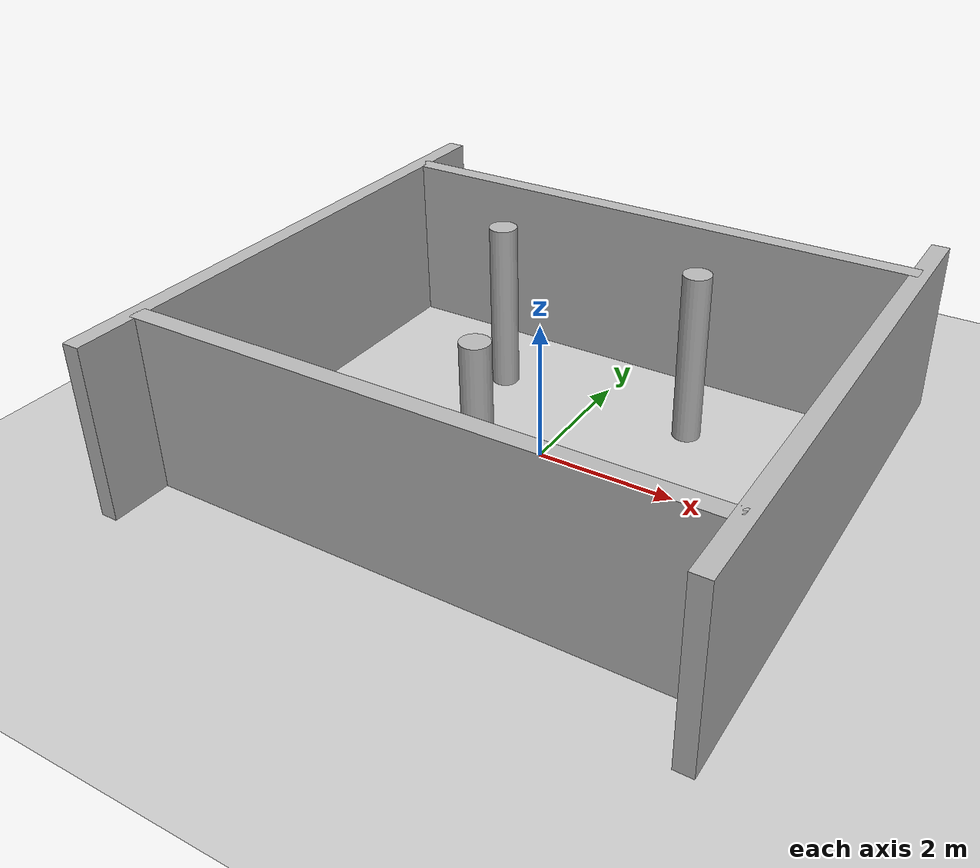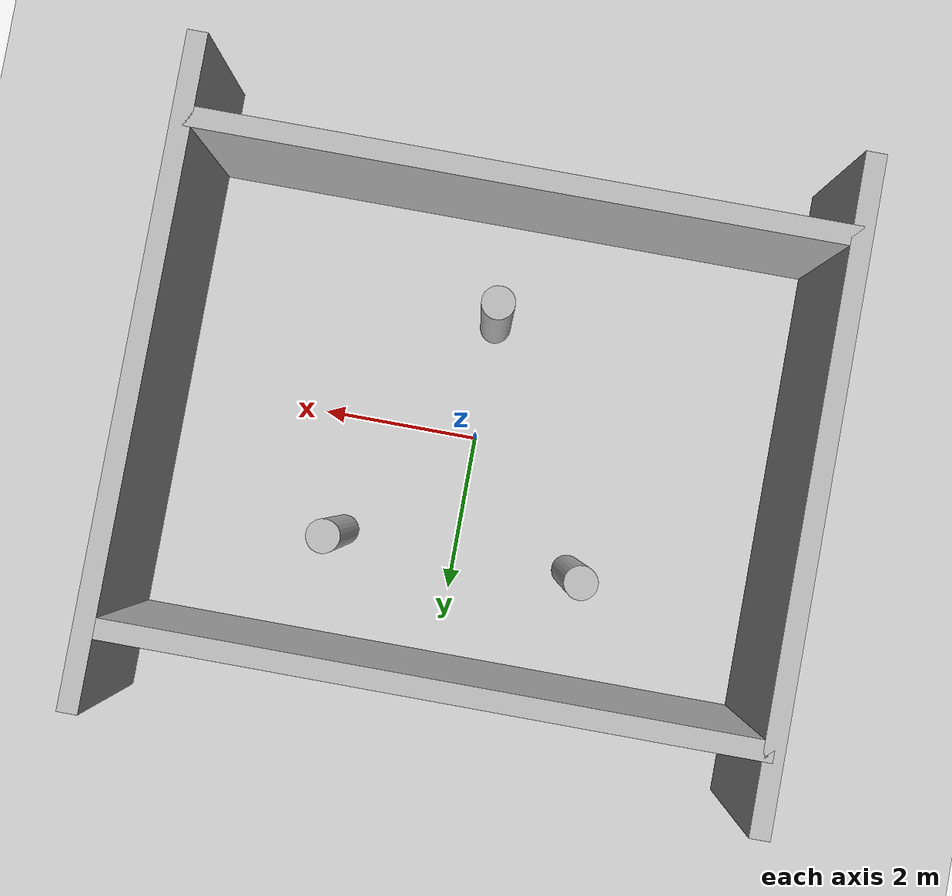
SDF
<?xml version="1.0" ?>
<sdf version="1.6">
  <world name="default">
    <include><uri>model://sun</uri></include>
    <include><uri>model://ground_plane</uri></include>

    <!-- Wall 1: North -->
    <model name="wall_north">
      <static>true</static>
      <pose>0 3 1.25 0 0 0</pose>
      <link name="link">
        <collision name="collision">
          <geometry><box><size>8 0.25 2.5</size></box></geometry>
        </collision>
        <visual name="visual">
          <geometry><box><size>8 0.25 2.5</size></box></geometry>
          <material><script>Gazebo/Grey</script></material>
        </visual>
      </link>
    </model>

    <!-- Wall 2: South -->
    <model name="wall_south">
      <static>true</static>
      <pose>0 -3 1.25 0 0 0</pose>
      <link name="link">
        <collision name="collision">
          <geometry><box><size>8 0.25 2.5</size></box></geometry>
        </collision>
        <visual name="visual">
          <geometry><box><size>8 0.25 2.5</size></box></geometry>
          <material><script>Gazebo/Grey</script></material>
        </visual>
      </link>
    </model>

    <!-- Wall 3: West -->
    <model name="wall_west">
      <static>true</static>
      <pose>-4 0 1.25 0 0 0</pose>
      <link name="link">
        <collision name="collision">
          <geometry><box><size>0.25 8 2.5</size></box></geometry>
        </collision>
        <visual name="visual">
          <geometry><box><size>0.25 8 2.5</size></box></geometry>
          <material><script>Gazebo/Grey</script></material>
        </visual>
      </link>
    </model>

    <!-- Wall 4: East -->
    <model name="wall_east">
      <static>true</static>
      <pose>4 0 1.25 0 0 0</pose>
      <link name="link">
        <collision name="collision">
          <geometry><box><size>0.25 8 2.5</size></box></geometry>
        </collision>
        <visual name="visual">
          <geometry><box><size>0.25 8 2.5</size></box></geometry>
          <material><script>Gazebo/Grey</script></material>
        </visual>
      </link>
    </model>

    <!-- Pillar 1 -->
    <model name="pillar_1">
      <static>true</static>
      <pose>1.5 1.5 1.25 0 0 0</pose>
      <link name="link">
        <collision name="collision">
          <geometry><cylinder><radius>0.2</radius><length>2.5</length></cylinder></geometry>
        </collision>
        <visual name="visual">
          <geometry><cylinder><radius>0.2</radius><length>2.5</length></cylinder></geometry>
          <material><script>Gazebo/Red</script></material>
        </visual>
      </link>
    </model>

    <!-- Pillar 2 -->
    <model name="pillar_2">
      <static>true</static>
      <pose>-1.5 1.5 1.25 0 0 0</pose>
      <link name="link">
        <collision name="collision">
          <geometry><cylinder><radius>0.2</radius><length>2.5</length></cylinder></geometry>
        </collision>
        <visual name="visual">
          <geometry><cylinder><radius>0.2</radius><length>2.5</length></cylinder></geometry>
          <material><script>Gazebo/Red</script></material>
        </visual>
      </link>
    </model>

    <!-- Pillar 3 -->
    <model name="pillar_3">
      <static>true</static>
      <pose>0 -1.5 1.25 0 0 0</pose>
      <link name="link">
        <collision name="collision">
          <geometry><cylinder><radius>0.2</radius><length>2.5</length></cylinder></geometry>
        </collision>
        <visual name="visual">
          <geometry><cylinder><radius>0.2</radius><length>2.5</length></cylinder></geometry>
          <material><script>Gazebo/Red</script></material>
        </visual>
      </link>
    </model>

  </world>
</sdf>
